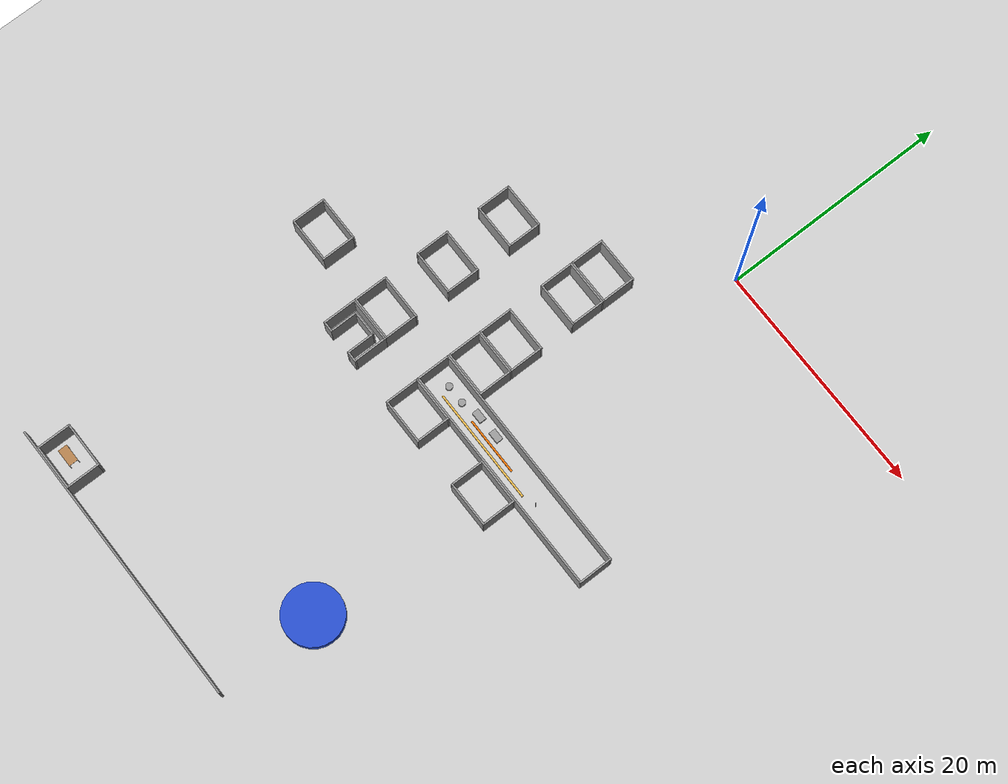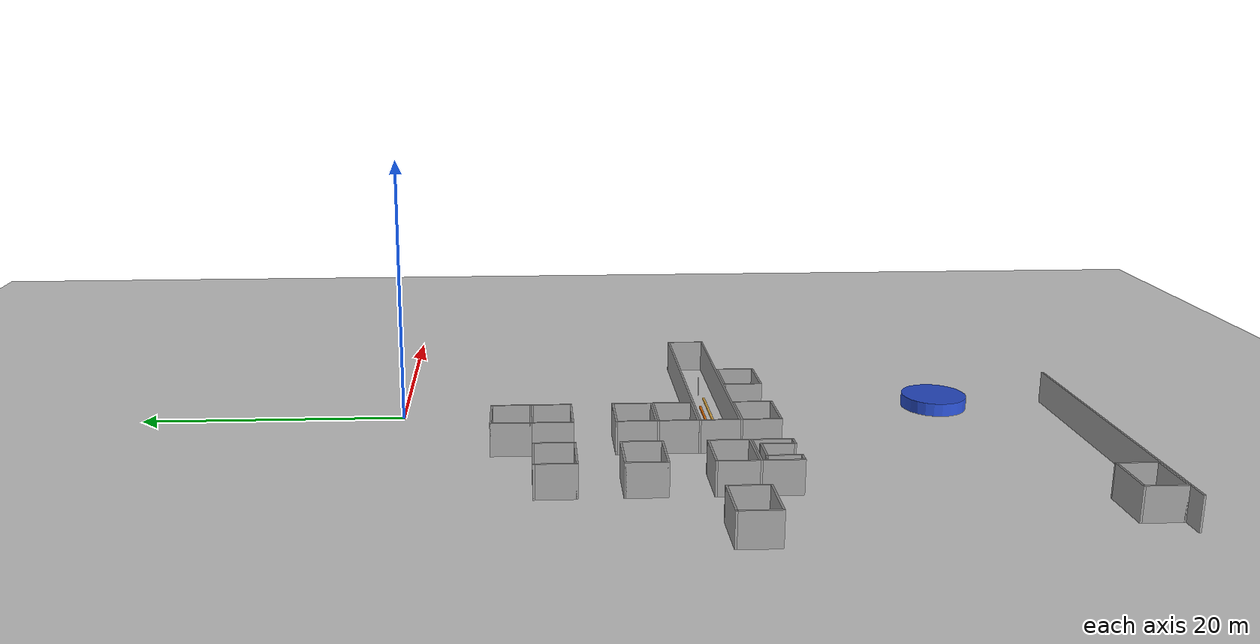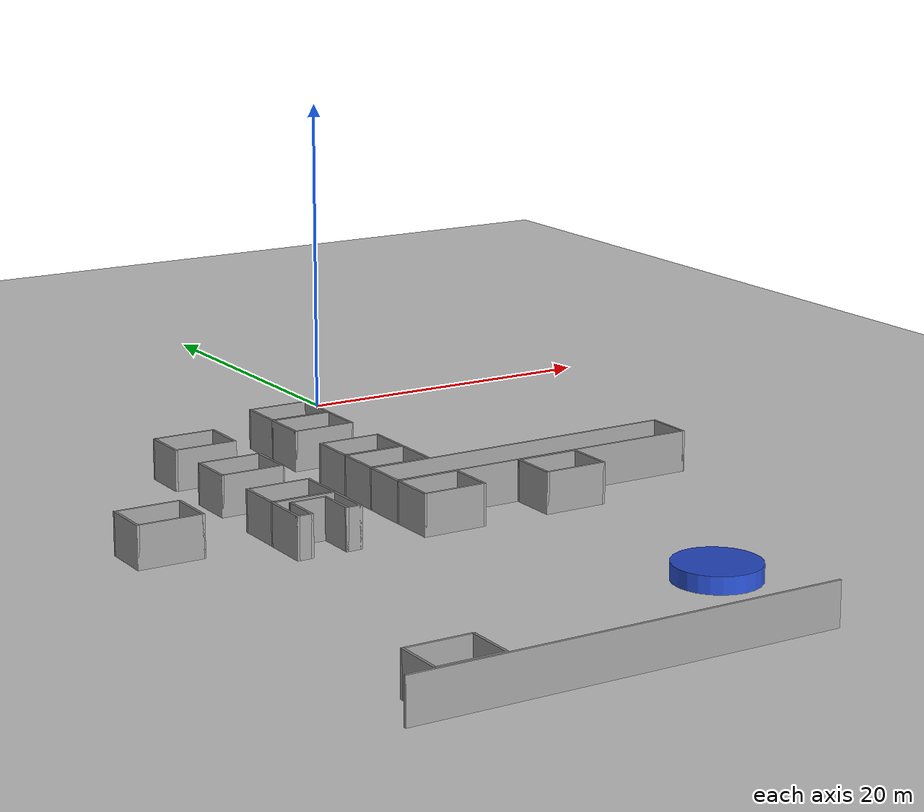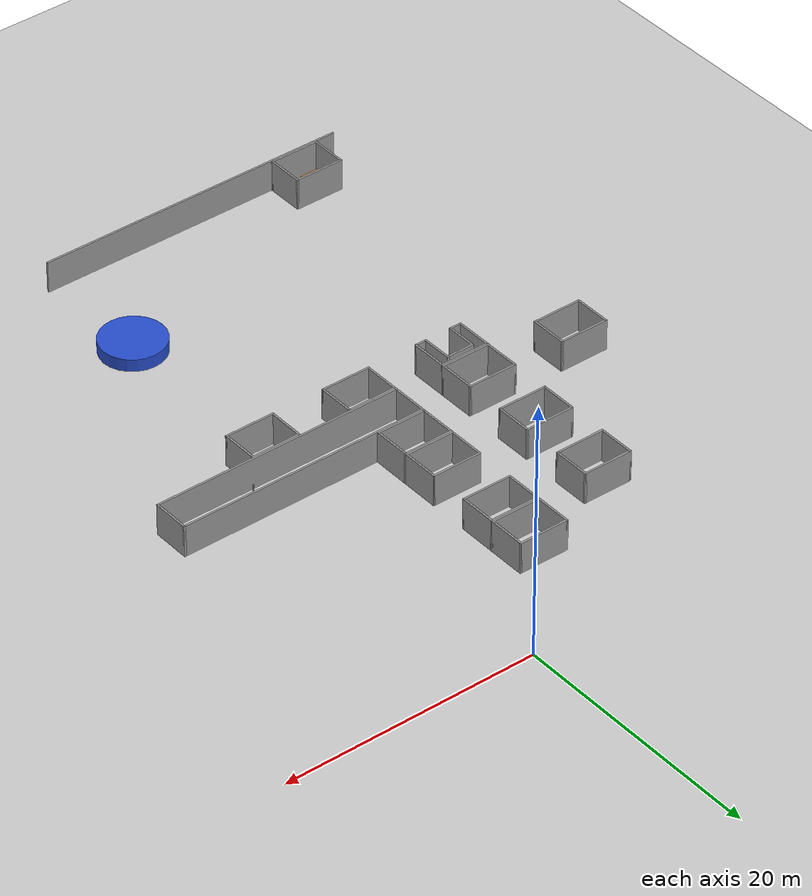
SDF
<sdf version="1.6">
 <world name="default">
  <model name="ground_plane">
   <static>1</static>
   <link name="link">
    <collision name="collision">
     <geometry><plane><normal>0 0 1</normal><size>105 105</size></plane></geometry>
     <surface>
      <contact><collide_bitmask>65535</collide_bitmask></contact>
      <friction><ode><mu>100</mu><mu2>50</mu2></ode></friction>
     </surface>
    </collision>
    <visual name="visual">
     <cast_shadows>0</cast_shadows>
     <geometry><plane><normal>0 0 1</normal><size>105 105</size></plane></geometry>
     <material>
      <script><uri>file://media/materials/scripts/gazebo.material</uri><name>Gazebo/Grey</name></script>
     </material>
    </visual>
   </link>
  </model>
  <model name="base3x20_2">
   <pose>1.5051 -23.232 0 0 -0 0</pose>
   <link name="Wall_16">
    <collision name="Wall_16_Collision">
     <geometry><box><size>3 0.15 2.5</size></box></geometry>
     <pose>0 0 1.25 0 -0 0</pose>
    </collision>
    <visual name="Wall_16_Visual">
     <pose>0 0 1.25 0 -0 0</pose>
     <geometry><box><size>3 0.15 2.5</size></box></geometry>
     <material>
      <script><uri>file://media/materials/scripts/gazebo.material</uri><name>Gazebo/Grey</name></script>
      <ambient>1 1 1 1</ambient>
     </material>
     <meta><layer>0</layer></meta>
    </visual>
    <pose>-9.925 -0 0 0 -0 -1.5708</pose>
   </link>
   <link name="Wall_17">
    <collision name="Wall_17_Collision">
     <geometry><box><size>20 0.15 2.5</size></box></geometry>
     <pose>0 0 1.25 0 -0 0</pose>
    </collision>
    <visual name="Wall_17_Visual">
     <pose>0 0 1.25 0 -0 0</pose>
     <geometry><box><size>20 0.15 2.5</size></box></geometry>
     <material>
      <script><uri>file://media/materials/scripts/gazebo.material</uri><name>Gazebo/Grey</name></script>
      <ambient>1 1 1 1</ambient>
     </material>
     <meta><layer>0</layer></meta>
    </visual>
    <pose>-0 -1.425 0 0 -0 0</pose>
   </link>
   <link name="Wall_18">
    <collision name="Wall_18_Collision">
     <geometry><box><size>3 0.15 2.5</size></box></geometry>
     <pose>0 0 1.25 0 -0 0</pose>
    </collision>
    <visual name="Wall_18_Visual">
     <pose>0 0 1.25 0 -0 0</pose>
     <geometry><box><size>3 0.15 2.5</size></box></geometry>
     <material>
      <script><uri>file://media/materials/scripts/gazebo.material</uri><name>Gazebo/Grey</name></script>
      <ambient>1 1 1 1</ambient>
     </material>
     <meta><layer>0</layer></meta>
    </visual>
    <pose>9.925 -0 0 0 -0 1.5708</pose>
   </link>
   <link name="Wall_19">
    <collision name="Wall_19_Collision">
     <geometry><box><size>20 0.15 2.5</size></box></geometry>
     <pose>0 0 1.25 0 -0 0</pose>
    </collision>
    <visual name="Wall_19_Visual">
     <pose>0 0 1.25 0 -0 0</pose>
     <geometry><box><size>20 0.15 2.5</size></box></geometry>
     <material>
      <script><uri>file://media/materials/scripts/gazebo.material</uri><name>Gazebo/Grey</name></script>
      <ambient>1 1 1 1</ambient>
     </material>
     <meta><layer>0</layer></meta>
    </visual>
    <pose>-0 1.425 0 0 -0 3.14159</pose>
   </link>
   <static>1</static>
  </model>
  <model name="base3x4_53">
   <pose>-22.3998 -23.2187 0 0 -0 0</pose>
   <link name="Wall_18">
    <collision name="Wall_18_Collision">
     <geometry><box><size>3 0.15 2.5</size></box></geometry>
     <pose>0 0 1.25 0 -0 0</pose>
    </collision>
    <visual name="Wall_18_Visual">
     <pose>0 0 1.25 0 -0 0</pose>
     <geometry><box><size>3 0.15 2.5</size></box></geometry>
     <material>
      <script><uri>file://media/materials/scripts/gazebo.material</uri><name>Gazebo/Grey</name></script>
      <ambient>1 1 1 1</ambient>
     </material>
     <meta><layer>0</layer></meta>
    </visual>
    <pose>-1.925 -0 0 0 -0 -1.5708</pose>
   </link>
   <link name="Wall_19">
    <collision name="Wall_19_Collision">
     <geometry><box><size>4 0.15 2.5</size></box></geometry>
     <pose>0 0 1.25 0 -0 0</pose>
    </collision>
    <visual name="Wall_19_Visual">
     <pose>0 0 1.25 0 -0 0</pose>
     <geometry><box><size>4 0.15 2.5</size></box></geometry>
     <material>
      <script><uri>file://media/materials/scripts/gazebo.material</uri><name>Gazebo/Grey</name></script>
      <ambient>1 1 1 1</ambient>
     </material>
     <meta><layer>0</layer></meta>
    </visual>
    <pose>-0 -1.425 0 0 -0 0</pose>
   </link>
   <link name="Wall_20">
    <collision name="Wall_20_Collision">
     <geometry><box><size>3 0.15 2.5</size></box></geometry>
     <pose>0 0 1.25 0 -0 0</pose>
    </collision>
    <visual name="Wall_20_Visual">
     <pose>0 0 1.25 0 -0 0</pose>
     <geometry><box><size>3 0.15 2.5</size></box></geometry>
     <material>
      <script><uri>file://media/materials/scripts/gazebo.material</uri><name>Gazebo/Grey</name></script>
      <ambient>1 1 1 1</ambient>
     </material>
     <meta><layer>0</layer></meta>
    </visual>
    <pose>1.925 -0 0 0 -0 1.5708</pose>
   </link>
   <link name="Wall_21">
    <collision name="Wall_21_Collision">
     <geometry><box><size>4 0.15 2.5</size></box></geometry>
     <pose>0 0 1.25 0 -0 0</pose>
    </collision>
    <visual name="Wall_21_Visual">
     <pose>0 0 1.25 0 -0 0</pose>
     <geometry><box><size>4 0.15 2.5</size></box></geometry>
     <material>
      <script><uri>file://media/materials/scripts/gazebo.material</uri><name>Gazebo/Grey</name></script>
      <ambient>1 1 1 1</ambient>
     </material>
     <meta><layer>0</layer></meta>
    </visual>
    <pose>-0 1.425 0 0 -0 3.14159</pose>
   </link>
   <static>1</static>
  </model>
  <model name="base3x4_64">
   <pose>-14.4197 -23.2316 0 0 -0 0</pose>
   <link name="Wall_18">
    <collision name="Wall_18_Collision">
     <geometry><box><size>3 0.15 2.5</size></box></geometry>
     <pose>0 0 1.25 0 -0 0</pose>
    </collision>
    <visual name="Wall_18_Visual">
     <pose>0 0 1.25 0 -0 0</pose>
     <geometry><box><size>3 0.15 2.5</size></box></geometry>
     <material>
      <script><uri>file://media/materials/scripts/gazebo.material</uri><name>Gazebo/Grey</name></script>
      <ambient>1 1 1 1</ambient>
     </material>
     <meta><layer>0</layer></meta>
    </visual>
    <pose>-1.925 -0 0 0 -0 -1.5708</pose>
   </link>
   <link name="Wall_19">
    <collision name="Wall_19_Collision">
     <geometry><box><size>4 0.15 2.5</size></box></geometry>
     <pose>0 0 1.25 0 -0 0</pose>
    </collision>
    <visual name="Wall_19_Visual">
     <pose>0 0 1.25 0 -0 0</pose>
     <geometry><box><size>4 0.15 2.5</size></box></geometry>
     <material>
      <script><uri>file://media/materials/scripts/gazebo.material</uri><name>Gazebo/Grey</name></script>
      <ambient>1 1 1 1</ambient>
     </material>
     <meta><layer>0</layer></meta>
    </visual>
    <pose>-0 -1.425 0 0 -0 0</pose>
   </link>
   <link name="Wall_20">
    <collision name="Wall_20_Collision">
     <geometry><box><size>3 0.15 2.5</size></box></geometry>
     <pose>0 0 1.25 0 -0 0</pose>
    </collision>
    <visual name="Wall_20_Visual">
     <pose>0 0 1.25 0 -0 0</pose>
     <geometry><box><size>3 0.15 2.5</size></box></geometry>
     <material>
      <script><uri>file://media/materials/scripts/gazebo.material</uri><name>Gazebo/Grey</name></script>
      <ambient>1 1 1 1</ambient>
     </material>
     <meta><layer>0</layer></meta>
    </visual>
    <pose>1.925 -0 0 0 -0 1.5708</pose>
   </link>
   <link name="Wall_21">
    <collision name="Wall_21_Collision">
     <geometry><box><size>4 0.15 2.5</size></box></geometry>
     <pose>0 0 1.25 0 -0 0</pose>
    </collision>
    <visual name="Wall_21_Visual">
     <pose>0 0 1.25 0 -0 0</pose>
     <geometry><box><size>4 0.15 2.5</size></box></geometry>
     <material>
      <script><uri>file://media/materials/scripts/gazebo.material</uri><name>Gazebo/Grey</name></script>
      <ambient>1 1 1 1</ambient>
     </material>
     <meta><layer>0</layer></meta>
    </visual>
    <pose>-0 1.425 0 0 -0 3.14159</pose>
   </link>
   <static>1</static>
  </model>
  <model name="base3x4_72">
   <pose>-14.4176 -17.2389 0 0 -0 0</pose>
   <link name="Wall_18">
    <collision name="Wall_18_Collision">
     <geometry><box><size>3 0.15 2.5</size></box></geometry>
     <pose>0 0 1.25 0 -0 0</pose>
    </collision>
    <visual name="Wall_18_Visual">
     <pose>0 0 1.25 0 -0 0</pose>
     <geometry><box><size>3 0.15 2.5</size></box></geometry>
     <material>
      <script><uri>file://media/materials/scripts/gazebo.material</uri><name>Gazebo/Grey</name></script>
      <ambient>1 1 1 1</ambient>
     </material>
     <meta><layer>0</layer></meta>
    </visual>
    <pose>-1.925 -0 0 0 -0 -1.5708</pose>
   </link>
   <link name="Wall_19">
    <collision name="Wall_19_Collision">
     <geometry><box><size>4 0.15 2.5</size></box></geometry>
     <pose>0 0 1.25 0 -0 0</pose>
    </collision>
    <visual name="Wall_19_Visual">
     <pose>0 0 1.25 0 -0 0</pose>
     <geometry><box><size>4 0.15 2.5</size></box></geometry>
     <material>
      <script><uri>file://media/materials/scripts/gazebo.material</uri><name>Gazebo/Grey</name></script>
      <ambient>1 1 1 1</ambient>
     </material>
     <meta><layer>0</layer></meta>
    </visual>
    <pose>-0 -1.425 0 0 -0 0</pose>
   </link>
   <link name="Wall_20">
    <collision name="Wall_20_Collision">
     <geometry><box><size>3 0.15 2.5</size></box></geometry>
     <pose>0 0 1.25 0 -0 0</pose>
    </collision>
    <visual name="Wall_20_Visual">
     <pose>0 0 1.25 0 -0 0</pose>
     <geometry><box><size>3 0.15 2.5</size></box></geometry>
     <material>
      <script><uri>file://media/materials/scripts/gazebo.material</uri><name>Gazebo/Grey</name></script>
      <ambient>1 1 1 1</ambient>
     </material>
     <meta><layer>0</layer></meta>
    </visual>
    <pose>1.925 -0 0 0 -0 1.5708</pose>
   </link>
   <link name="Wall_21">
    <collision name="Wall_21_Collision">
     <geometry><box><size>4 0.15 2.5</size></box></geometry>
     <pose>0 0 1.25 0 -0 0</pose>
    </collision>
    <visual name="Wall_21_Visual">
     <pose>0 0 1.25 0 -0 0</pose>
     <geometry><box><size>4 0.15 2.5</size></box></geometry>
     <material>
      <script><uri>file://media/materials/scripts/gazebo.material</uri><name>Gazebo/Grey</name></script>
      <ambient>1 1 1 1</ambient>
     </material>
     <meta><layer>0</layer></meta>
    </visual>
    <pose>-0 1.425 0 0 -0 3.14159</pose>
   </link>
   <static>1</static>
  </model>
  <model name="base3x4_75">
   <pose>-14.4135 -11.2542 0 0 -0 0</pose>
   <link name="Wall_18">
    <collision name="Wall_18_Collision">
     <geometry><box><size>3 0.15 2.5</size></box></geometry>
     <pose>0 0 1.25 0 -0 0</pose>
    </collision>
    <visual name="Wall_18_Visual">
     <pose>0 0 1.25 0 -0 0</pose>
     <geometry><box><size>3 0.15 2.5</size></box></geometry>
     <material>
      <script><uri>file://media/materials/scripts/gazebo.material</uri><name>Gazebo/Grey</name></script>
      <ambient>1 1 1 1</ambient>
     </material>
     <meta><layer>0</layer></meta>
    </visual>
    <pose>-1.925 -0 0 0 -0 -1.5708</pose>
   </link>
   <link name="Wall_19">
    <collision name="Wall_19_Collision">
     <geometry><box><size>4 0.15 2.5</size></box></geometry>
     <pose>0 0 1.25 0 -0 0</pose>
    </collision>
    <visual name="Wall_19_Visual">
     <pose>0 0 1.25 0 -0 0</pose>
     <geometry><box><size>4 0.15 2.5</size></box></geometry>
     <material>
      <script><uri>file://media/materials/scripts/gazebo.material</uri><name>Gazebo/Grey</name></script>
      <ambient>1 1 1 1</ambient>
     </material>
     <meta><layer>0</layer></meta>
    </visual>
    <pose>-0 -1.425 0 0 -0 0</pose>
   </link>
   <link name="Wall_20">
    <collision name="Wall_20_Collision">
     <geometry><box><size>3 0.15 2.5</size></box></geometry>
     <pose>0 0 1.25 0 -0 0</pose>
    </collision>
    <visual name="Wall_20_Visual">
     <pose>0 0 1.25 0 -0 0</pose>
     <geometry><box><size>3 0.15 2.5</size></box></geometry>
     <material>
      <script><uri>file://media/materials/scripts/gazebo.material</uri><name>Gazebo/Grey</name></script>
      <ambient>1 1 1 1</ambient>
     </material>
     <meta><layer>0</layer></meta>
    </visual>
    <pose>1.925 -0 0 0 -0 1.5708</pose>
   </link>
   <link name="Wall_21">
    <collision name="Wall_21_Collision">
     <geometry><box><size>4 0.15 2.5</size></box></geometry>
     <pose>0 0 1.25 0 -0 0</pose>
    </collision>
    <visual name="Wall_21_Visual">
     <pose>0 0 1.25 0 -0 0</pose>
     <geometry><box><size>4 0.15 2.5</size></box></geometry>
     <material>
      <script><uri>file://media/materials/scripts/gazebo.material</uri><name>Gazebo/Grey</name></script>
      <ambient>1 1 1 1</ambient>
     </material>
     <meta><layer>0</layer></meta>
    </visual>
    <pose>-0 1.425 0 0 -0 3.14159</pose>
   </link>
   <static>1</static>
  </model>
  <model name="base3x4_37">
   <pose>-19.8731 -49.167 0 0 -0 0</pose>
   <link name="Wall_18">
    <collision name="Wall_18_Collision">
     <geometry><box><size>3 0.15 2.5</size></box></geometry>
     <pose>0 0 1.25 0 -0 0</pose>
    </collision>
    <visual name="Wall_18_Visual">
     <pose>0 0 1.25 0 -0 0</pose>
     <geometry><box><size>3 0.15 2.5</size></box></geometry>
     <material>
      <script><uri>file://media/materials/scripts/gazebo.material</uri><name>Gazebo/Grey</name></script>
      <ambient>1 1 1 1</ambient>
     </material>
     <meta><layer>0</layer></meta>
    </visual>
    <pose>-1.925 -0 0 0 -0 -1.5708</pose>
   </link>
   <link name="Wall_19">
    <collision name="Wall_19_Collision">
     <geometry><box><size>4 0.15 2.5</size></box></geometry>
     <pose>0 0 1.25 0 -0 0</pose>
    </collision>
    <visual name="Wall_19_Visual">
     <pose>0 0 1.25 0 -0 0</pose>
     <geometry><box><size>4 0.15 2.5</size></box></geometry>
     <material>
      <script><uri>file://media/materials/scripts/gazebo.material</uri><name>Gazebo/Grey</name></script>
      <ambient>1 1 1 1</ambient>
     </material>
     <meta><layer>0</layer></meta>
    </visual>
    <pose>-0 -1.425 0 0 -0 0</pose>
   </link>
   <link name="Wall_20">
    <collision name="Wall_20_Collision">
     <geometry><box><size>3 0.15 2.5</size></box></geometry>
     <pose>0 0 1.25 0 -0 0</pose>
    </collision>
    <visual name="Wall_20_Visual">
     <pose>0 0 1.25 0 -0 0</pose>
     <geometry><box><size>3 0.15 2.5</size></box></geometry>
     <material>
      <script><uri>file://media/materials/scripts/gazebo.material</uri><name>Gazebo/Grey</name></script>
      <ambient>1 1 1 1</ambient>
     </material>
     <meta><layer>0</layer></meta>
    </visual>
    <pose>1.925 -0 0 0 -0 1.5708</pose>
   </link>
   <link name="Wall_21">
    <collision name="Wall_21_Collision">
     <geometry><box><size>4 0.15 2.5</size></box></geometry>
     <pose>0 0 1.25 0 -0 0</pose>
    </collision>
    <visual name="Wall_21_Visual">
     <pose>0 0 1.25 0 -0 0</pose>
     <geometry><box><size>4 0.15 2.5</size></box></geometry>
     <material>
      <script><uri>file://media/materials/scripts/gazebo.material</uri><name>Gazebo/Grey</name></script>
      <ambient>1 1 1 1</ambient>
     </material>
     <meta><layer>0</layer></meta>
    </visual>
    <pose>-0 1.425 0 0 -0 3.14159</pose>
   </link>
   <static>1</static>
  </model>
  <model name="wall_25m_7">
   <pose>-10.9546 -50.7217 0 0 -0 0</pose>
   <link name="Wall_28">
    <collision name="Wall_28_Collision">
     <geometry><box><size>25 0.15 2.5</size></box></geometry>
     <pose>0 0 1.25 0 -0 0</pose>
    </collision>
    <visual name="Wall_28_Visual">
     <pose>0 0 1.25 0 -0 0</pose>
     <geometry><box><size>25 0.15 2.5</size></box></geometry>
     <material>
      <script><uri>file://media/materials/scripts/gazebo.material</uri><name>Gazebo/Grey</name></script>
      <ambient>1 1 1 1</ambient>
     </material>
     <meta><layer>0</layer></meta>
    </visual>
   </link>
   <static>1</static>
  </model>
  <model name="table_14">
   <static>1</static>
   <link name="link">
    <collision name="surface">
     <pose>0 0 1 0 -0 0</pose>
     <geometry><box><size>1.5 0.8 0.03</size></box></geometry>
     <surface><friction><ode><mu>0.6</mu><mu2>0.6</mu2></ode></friction></surface>
    </collision>
    <visual name="visual1">
     <pose>0 0 1 0 -0 0</pose>
     <geometry><box><size>1.5 0.8 0.03</size></box></geometry>
     <material>
      <script><uri>file://media/materials/scripts/gazebo.material</uri><name>Gazebo/Wood</name></script>
     </material>
    </visual>
    <collision name="front_left_leg">
     <pose>0.68 0.38 0.5 0 -0 0</pose>
     <geometry><cylinder><radius>0.02</radius><length>1</length></cylinder></geometry>
    </collision>
    <visual name="front_left_leg">
     <pose>0.68 0.38 0.5 0 -0 0</pose>
     <geometry><cylinder><radius>0.02</radius><length>1</length></cylinder></geometry>
     <material>
      <script><uri>file://media/materials/scripts/gazebo.material</uri><name>Gazebo/Grey</name></script>
     </material>
    </visual>
    <collision name="front_right_leg">
     <pose>0.68 -0.38 0.5 0 -0 0</pose>
     <geometry><cylinder><radius>0.02</radius><length>1</length></cylinder></geometry>
    </collision>
    <visual name="front_right_leg">
     <pose>0.68 -0.38 0.5 0 -0 0</pose>
     <geometry><cylinder><radius>0.02</radius><length>1</length></cylinder></geometry>
     <material>
      <script><uri>file://media/materials/scripts/gazebo.material</uri><name>Gazebo/Grey</name></script>
     </material>
    </visual>
    <collision name="back_right_leg">
     <pose>-0.68 -0.38 0.5 0 -0 0</pose>
     <geometry><cylinder><radius>0.02</radius><length>1</length></cylinder></geometry>
    </collision>
    <visual name="back_right_leg">
     <pose>-0.68 -0.38 0.5 0 -0 0</pose>
     <geometry><cylinder><radius>0.02</radius><length>1</length></cylinder></geometry>
     <material>
      <script><uri>file://media/materials/scripts/gazebo.material</uri><name>Gazebo/Grey</name></script>
     </material>
    </visual>
    <collision name="back_left_leg">
     <pose>-0.68 0.38 0.5 0 -0 0</pose>
     <geometry><cylinder><radius>0.02</radius><length>1</length></cylinder></geometry>
    </collision>
    <visual name="back_left_leg">
     <pose>-0.68 0.38 0.5 0 -0 0</pose>
     <geometry><cylinder><radius>0.02</radius><length>1</length></cylinder></geometry>
     <material>
      <script><uri>file://media/materials/scripts/gazebo.material</uri><name>Gazebo/Grey</name></script>
     </material>
    </visual>
   </link>
   <pose>-20.3507 -49.1946 0 0 -0 0</pose>
  </model>
  <model name="bar10x0.15x0.15">
   <pose>-1.69484 -23.7489 0 0 -0 0</pose>
   <link name="Wall_5">
    <collision name="Wall_5_Collision">
     <geometry><box><size>10 0.15 0.15</size></box></geometry>
     <pose>0 0 0.075 0 -0 0</pose>
    </collision>
    <visual name="Wall_5_Visual">
     <pose>0 0 0.075 0 -0 0</pose>
     <geometry><box><size>10 0.15 0.15</size></box></geometry>
     <material>
      <script><uri>file://media/materials/scripts/gazebo.material</uri><name>Gazebo/Grey</name></script>
      <ambient>1 0.764706 0.305882 1</ambient>
     </material>
     <meta><layer>0</layer></meta>
    </visual>
   </link>
   <static>1</static>
  </model>
  <model name="bar5x0.15x0.15">
   <pose>-1.24356 -23.2103 0 0 -0 0</pose>
   <link name="Wall_12">
    <collision name="Wall_12_Collision">
     <geometry><box><size>5 0.15 0.15</size></box></geometry>
     <pose>0 0 0.075 0 -0 0</pose>
    </collision>
    <visual name="Wall_12_Visual">
     <pose>0 0 0.075 0 -0 0</pose>
     <geometry><box><size>5 0.15 0.15</size></box></geometry>
     <material>
      <script><uri>file://media/materials/scripts/gazebo.material</uri><name>Gazebo/Grey</name></script>
      <ambient>0.996078 0.47451 0.0196078 1</ambient>
     </material>
     <meta><layer>0</layer></meta>
    </visual>
   </link>
   <static>1</static>
  </model>
  <model name="unit_box_5mmx5mmx2m">
   <link name="link">
    <inertial>
     <mass>1</mass>
     <inertia>
      <ixx>0.166667</ixx>
      <ixy>0</ixy>
      <ixz>0</ixz>
      <iyy>0.166667</iyy>
      <iyz>0</iyz>
      <izz>0.166667</izz>
     </inertia>
    </inertial>
    <visual name="visual">
     <geometry><box><size>0.05 0.05 2</size></box></geometry>
     <material>
      <script><name>Gazebo/Grey</name><uri>file://media/materials/scripts/gazebo.material</uri></script>
      <shader type="vertex"><normal_map>__default__</normal_map></shader>
      <ambient>0.3 0.3 0.3 1</ambient>
      <diffuse>0.7 0.7 0.7 1</diffuse>
      <specular>0.01 0.01 0.01 1</specular>
      <emissive>0 0 0 1</emissive>
     </material>
    </visual>
    <collision name="collision">
     <geometry><box><size>1 1 1</size></box></geometry>
     <surface>
      <friction>
       <ode><mu>1</mu><mu2>1</mu2><fdir1>0 0 0</fdir1><slip1>0</slip1><slip2>0</slip2></ode>
       <torsional>
        <coefficient>1</coefficient>
        <patch_radius>0</patch_radius>
        <surface_radius>0</surface_radius>
        <use_patch_radius>1</use_patch_radius>
        <ode><slip>0</slip></ode>
       </torsional>
      </friction>
      <bounce><restitution_coefficient>0</restitution_coefficient><threshold>1e+06</threshold></bounce>
      <contact>
       <collide_without_contact>0</collide_without_contact>
       <collide_without_contact_bitmask>1</collide_without_contact_bitmask>
       <collide_bitmask>1</collide_bitmask>
       <ode>
        <soft_cfm>0</soft_cfm>
        <soft_erp>0.2</soft_erp>
        <kp>1e+13</kp>
        <kd>1</kd>
        <max_vel>0.01</max_vel>
        <min_depth>0</min_depth>
       </ode>
       <bullet>
        <split_impulse>1</split_impulse>
        <split_impulse_penetration_threshold>-0.01</split_impulse_penetration_threshold>
        <soft_cfm>0</soft_cfm>
        <soft_erp>0.2</soft_erp>
        <kp>1e+13</kp>
        <kd>1</kd>
       </bullet>
      </contact>
     </surface>
    </collision>
   </link>
   <static>0</static>
   <pose>4.52759 -23.4698 0.499983 3.4e-05 -0 0</pose>
  </model>
  <model name="unit_cylinder_r2.5_l1">
   <link name="link">
    <inertial>
     <mass>1</mass>
     <inertia><ixx>0.145833</ixx><ixy>0</ixy><ixz>0</ixz><iyy>0.145833</iyy><iyz>0</iyz><izz>0.125</izz></inertia>
    </inertial>
    <visual name="visual">
     <geometry><cylinder><radius>2.5</radius><length>1</length></cylinder></geometry>
     <material>
      <script><name>Gazebo/Blue</name><uri>file://media/materials/scripts/gazebo.material</uri></script>
      <shader type="vertex"><normal_map>__default__</normal_map></shader>
      <ambient>0.3 0.3 0.3 1</ambient>
      <diffuse>0.7 0.7 0.7 1</diffuse>
      <specular>0.01 0.01 0.01 1</specular>
      <emissive>0 0 0 1</emissive>
     </material>
    </visual>
    <collision name="collision">
     <geometry><cylinder><radius>2.5</radius><length>1</length></cylinder></geometry>
     <surface>
      <friction>
       <ode><mu>1</mu><mu2>1</mu2><fdir1>0 0 0</fdir1><slip1>0</slip1><slip2>0</slip2></ode>
       <torsional>
        <coefficient>1</coefficient>
        <patch_radius>0</patch_radius>
        <surface_radius>0</surface_radius>
        <use_patch_radius>1</use_patch_radius>
        <ode><slip>0</slip></ode>
       </torsional>
      </friction>
      <bounce><restitution_coefficient>0</restitution_coefficient><threshold>1e+06</threshold></bounce>
      <contact>
       <collide_without_contact>0</collide_without_contact>
       <collide_without_contact_bitmask>1</collide_without_contact_bitmask>
       <collide_bitmask>1</collide_bitmask>
       <ode>
        <soft_cfm>0</soft_cfm>
        <soft_erp>0.2</soft_erp>
        <kp>1e+13</kp>
        <kd>1</kd>
        <max_vel>0.01</max_vel>
        <min_depth>0</min_depth>
       </ode>
       <bullet>
        <split_impulse>1</split_impulse>
        <split_impulse_penetration_threshold>-0.01</split_impulse_penetration_threshold>
        <soft_cfm>0</soft_cfm>
        <soft_erp>0.2</soft_erp>
        <kp>1e+13</kp>
        <kd>1</kd>
       </bullet>
      </contact>
     </surface>
    </collision>
   </link>
   <static>0</static>
   <pose>0.856728 -41.7756 0.5 0 -0 8e-06</pose>
  </model>
  <model name="unit_cylinder30x30cm_1">
   <link name="link">
    <inertial>
     <mass>1</mass>
     <inertia><ixx>0.145833</ixx><ixy>0</ixy><ixz>0</ixz><iyy>0.145833</iyy><iyz>0</iyz><izz>0.125</izz></inertia>
    </inertial>
    <visual name="visual">
     <geometry><cylinder><radius>0.3</radius><length>0.3</length></cylinder></geometry>
     <material>
      <script><name>Gazebo/Grey</name><uri>file://media/materials/scripts/gazebo.material</uri></script>
      <shader type="vertex"><normal_map>__default__</normal_map></shader>
      <ambient>0.3 0.3 0.3 1</ambient>
      <diffuse>0.7 0.7 0.7 1</diffuse>
      <specular>0.01 0.01 0.01 1</specular>
      <emissive>0 0 0 1</emissive>
     </material>
    </visual>
    <collision name="collision">
     <geometry><cylinder><radius>0.3</radius><length>0.3</length></cylinder></geometry>
     <surface>
      <friction>
       <ode><mu>1</mu><mu2>1</mu2><fdir1>0 0 0</fdir1><slip1>0</slip1><slip2>0</slip2></ode>
       <torsional>
        <coefficient>1</coefficient>
        <patch_radius>0</patch_radius>
        <surface_radius>0</surface_radius>
        <use_patch_radius>1</use_patch_radius>
        <ode><slip>0</slip></ode>
       </torsional>
      </friction>
      <bounce><restitution_coefficient>0</restitution_coefficient><threshold>1e+06</threshold></bounce>
      <contact>
       <collide_without_contact>0</collide_without_contact>
       <collide_without_contact_bitmask>1</collide_without_contact_bitmask>
       <collide_bitmask>1</collide_bitmask>
       <ode>
        <soft_cfm>0</soft_cfm>
        <soft_erp>0.2</soft_erp>
        <kp>1e+13</kp>
        <kd>1</kd>
        <max_vel>0.01</max_vel>
        <min_depth>0</min_depth>
       </ode>
       <bullet>
        <split_impulse>1</split_impulse>
        <split_impulse_penetration_threshold>-0.01</split_impulse_penetration_threshold>
        <soft_cfm>0</soft_cfm>
        <soft_erp>0.2</soft_erp>
        <kp>1e+13</kp>
        <kd>1</kd>
       </bullet>
      </contact>
     </surface>
    </collision>
   </link>
   <static>0</static>
   <pose>-5.34818 -22.9136 0.149981 -0 -0 -0</pose>
  </model>
  <model name="unit_cylinder30x30cm_2">
   <link name="link">
    <inertial>
     <mass>1</mass>
     <inertia><ixx>0.145833</ixx><ixy>0</ixy><ixz>0</ixz><iyy>0.145833</iyy><iyz>0</iyz><izz>0.125</izz></inertia>
    </inertial>
    <visual name="visual">
     <geometry><cylinder><radius>0.3</radius><length>0.3</length></cylinder></geometry>
     <material>
      <script><name>Gazebo/Grey</name><uri>file://media/materials/scripts/gazebo.material</uri></script>
      <shader type="vertex"><normal_map>__default__</normal_map></shader>
      <ambient>0.3 0.3 0.3 1</ambient>
      <diffuse>0.7 0.7 0.7 1</diffuse>
      <specular>0.01 0.01 0.01 1</specular>
      <emissive>0 0 0 1</emissive>
     </material>
    </visual>
    <collision name="collision">
     <geometry><cylinder><radius>0.3</radius><length>0.3</length></cylinder></geometry>
     <surface>
      <friction>
       <ode><mu>1</mu><mu2>1</mu2><fdir1>0 0 0</fdir1><slip1>0</slip1><slip2>0</slip2></ode>
       <torsional>
        <coefficient>1</coefficient>
        <patch_radius>0</patch_radius>
        <surface_radius>0</surface_radius>
        <use_patch_radius>1</use_patch_radius>
        <ode><slip>0</slip></ode>
       </torsional>
      </friction>
      <bounce><restitution_coefficient>0</restitution_coefficient><threshold>1e+06</threshold></bounce>
      <contact>
       <collide_without_contact>0</collide_without_contact>
       <collide_without_contact_bitmask>1</collide_without_contact_bitmask>
       <collide_bitmask>1</collide_bitmask>
       <ode>
        <soft_cfm>0</soft_cfm>
        <soft_erp>0.2</soft_erp>
        <kp>1e+13</kp>
        <kd>1</kd>
        <max_vel>0.01</max_vel>
        <min_depth>0</min_depth>
       </ode>
       <bullet>
        <split_impulse>1</split_impulse>
        <split_impulse_penetration_threshold>-0.01</split_impulse_penetration_threshold>
        <soft_cfm>0</soft_cfm>
        <soft_erp>0.2</soft_erp>
        <kp>1e+13</kp>
        <kd>1</kd>
       </bullet>
      </contact>
     </surface>
    </collision>
   </link>
   <static>0</static>
   <pose>-6.96506 -22.9077 0.149981 -0 -0 -0</pose>
  </model>
  <model name="unit_box_100x60x30cm_1">
   <link name="link">
    <inertial>
     <mass>1</mass>
     <inertia>
      <ixx>0.166667</ixx>
      <ixy>0</ixy>
      <ixz>0</ixz>
      <iyy>0.166667</iyy>
      <iyz>0</iyz>
      <izz>0.166667</izz>
     </inertia>
    </inertial>
    <visual name="visual">
     <geometry><box><size>1 0.6 0.3</size></box></geometry>
     <material>
      <script><name>Gazebo/Grey</name><uri>file://media/materials/scripts/gazebo.material</uri></script>
      <shader type="vertex"><normal_map>__default__</normal_map></shader>
      <ambient>0.3 0.3 0.3 1</ambient>
      <diffuse>0.7 0.7 0.7 1</diffuse>
      <specular>0.01 0.01 0.01 1</specular>
      <emissive>0 0 0 1</emissive>
     </material>
    </visual>
    <collision name="collision">
     <geometry><box><size>1 0.6 0.3</size></box></geometry>
     <surface>
      <friction>
       <ode><mu>1</mu><mu2>1</mu2><fdir1>0 0 0</fdir1><slip1>0</slip1><slip2>0</slip2></ode>
       <torsional>
        <coefficient>1</coefficient>
        <patch_radius>0</patch_radius>
        <surface_radius>0</surface_radius>
        <use_patch_radius>1</use_patch_radius>
        <ode><slip>0</slip></ode>
       </torsional>
      </friction>
      <bounce><restitution_coefficient>0</restitution_coefficient><threshold>1e+06</threshold></bounce>
      <contact>
       <collide_without_contact>0</collide_without_contact>
       <collide_without_contact_bitmask>1</collide_without_contact_bitmask>
       <collide_bitmask>1</collide_bitmask>
       <ode>
        <soft_cfm>0</soft_cfm>
        <soft_erp>0.2</soft_erp>
        <kp>1e+13</kp>
        <kd>1</kd>
        <max_vel>0.01</max_vel>
        <min_depth>0</min_depth>
       </ode>
       <bullet>
        <split_impulse>1</split_impulse>
        <split_impulse_penetration_threshold>-0.01</split_impulse_penetration_threshold>
        <soft_cfm>0</soft_cfm>
        <soft_erp>0.2</soft_erp>
        <kp>1e+13</kp>
        <kd>1</kd>
       </bullet>
      </contact>
     </surface>
    </collision>
   </link>
   <static>0</static>
   <pose>-3.68716 -22.5271 0.15 0 -0 0</pose>
  </model>
  <model name="unit_box_100x60x30cm_2">
   <link name="link">
    <inertial>
     <mass>1</mass>
     <inertia>
      <ixx>0.166667</ixx>
      <ixy>0</ixy>
      <ixz>0</ixz>
      <iyy>0.166667</iyy>
      <iyz>0</iyz>
      <izz>0.166667</izz>
     </inertia>
    </inertial>
    <visual name="visual">
     <geometry><box><size>1 0.6 0.3</size></box></geometry>
     <material>
      <script><name>Gazebo/Grey</name><uri>file://media/materials/scripts/gazebo.material</uri></script>
      <shader type="vertex"><normal_map>__default__</normal_map></shader>
      <ambient>0.3 0.3 0.3 1</ambient>
      <diffuse>0.7 0.7 0.7 1</diffuse>
      <specular>0.01 0.01 0.01 1</specular>
      <emissive>0 0 0 1</emissive>
     </material>
    </visual>
    <collision name="collision">
     <geometry><box><size>1 0.6 0.3</size></box></geometry>
     <surface>
      <friction>
       <ode><mu>1</mu><mu2>1</mu2><fdir1>0 0 0</fdir1><slip1>0</slip1><slip2>0</slip2></ode>
       <torsional>
        <coefficient>1</coefficient>
        <patch_radius>0</patch_radius>
        <surface_radius>0</surface_radius>
        <use_patch_radius>1</use_patch_radius>
        <ode><slip>0</slip></ode>
       </torsional>
      </friction>
      <bounce><restitution_coefficient>0</restitution_coefficient><threshold>1e+06</threshold></bounce>
      <contact>
       <collide_without_contact>0</collide_without_contact>
       <collide_without_contact_bitmask>1</collide_without_contact_bitmask>
       <collide_bitmask>1</collide_bitmask>
       <ode>
        <soft_cfm>0</soft_cfm>
        <soft_erp>0.2</soft_erp>
        <kp>1e+13</kp>
        <kd>1</kd>
        <max_vel>0.01</max_vel>
        <min_depth>0</min_depth>
       </ode>
       <bullet>
        <split_impulse>1</split_impulse>
        <split_impulse_penetration_threshold>-0.01</split_impulse_penetration_threshold>
        <soft_cfm>0</soft_cfm>
        <soft_erp>0.2</soft_erp>
        <kp>1e+13</kp>
        <kd>1</kd>
       </bullet>
      </contact>
     </surface>
    </collision>
   </link>
   <static>0</static>
   <pose>-1.65474 -22.4797 0.15 0 -0 0</pose>
  </model>
  <model name="base3x4_47">
   <pose>-6.49308 -20.2372 0 0 -0 0</pose>
   <link name="Wall_18">
    <collision name="Wall_18_Collision">
     <geometry><box><size>3 0.15 2.5</size></box></geometry>
     <pose>0 0 1.25 0 -0 0</pose>
    </collision>
    <visual name="Wall_18_Visual">
     <pose>0 0 1.25 0 -0 0</pose>
     <geometry><box><size>3 0.15 2.5</size></box></geometry>
     <material>
      <script><uri>file://media/materials/scripts/gazebo.material</uri><name>Gazebo/Grey</name></script>
      <ambient>1 1 1 1</ambient>
     </material>
     <meta><layer>0</layer></meta>
    </visual>
    <pose>-1.925 -0 0 0 -0 -1.5708</pose>
   </link>
   <link name="Wall_19">
    <collision name="Wall_19_Collision">
     <geometry><box><size>4 0.15 2.5</size></box></geometry>
     <pose>0 0 1.25 0 -0 0</pose>
    </collision>
    <visual name="Wall_19_Visual">
     <pose>0 0 1.25 0 -0 0</pose>
     <geometry><box><size>4 0.15 2.5</size></box></geometry>
     <material>
      <script><uri>file://media/materials/scripts/gazebo.material</uri><name>Gazebo/Grey</name></script>
      <ambient>1 1 1 1</ambient>
     </material>
     <meta><layer>0</layer></meta>
    </visual>
    <pose>-0 -1.425 0 0 -0 0</pose>
   </link>
   <link name="Wall_20">
    <collision name="Wall_20_Collision">
     <geometry><box><size>3 0.15 2.5</size></box></geometry>
     <pose>0 0 1.25 0 -0 0</pose>
    </collision>
    <visual name="Wall_20_Visual">
     <pose>0 0 1.25 0 -0 0</pose>
     <geometry><box><size>3 0.15 2.5</size></box></geometry>
     <material>
      <script><uri>file://media/materials/scripts/gazebo.material</uri><name>Gazebo/Grey</name></script>
      <ambient>1 1 1 1</ambient>
     </material>
     <meta><layer>0</layer></meta>
    </visual>
    <pose>1.925 -0 0 0 -0 1.5708</pose>
   </link>
   <link name="Wall_21">
    <collision name="Wall_21_Collision">
     <geometry><box><size>4 0.15 2.5</size></box></geometry>
     <pose>0 0 1.25 0 -0 0</pose>
    </collision>
    <visual name="Wall_21_Visual">
     <pose>0 0 1.25 0 -0 0</pose>
     <geometry><box><size>4 0.15 2.5</size></box></geometry>
     <material>
      <script><uri>file://media/materials/scripts/gazebo.material</uri><name>Gazebo/Grey</name></script>
      <ambient>1 1 1 1</ambient>
     </material>
     <meta><layer>0</layer></meta>
    </visual>
    <pose>-0 1.425 0 0 -0 3.14159</pose>
   </link>
   <static>1</static>
  </model>
  <model name="base3x4_52">
   <pose>-6.49511 -17.2522 0 0 -0 0</pose>
   <link name="Wall_18">
    <collision name="Wall_18_Collision">
     <geometry><box><size>3 0.15 2.5</size></box></geometry>
     <pose>0 0 1.25 0 -0 0</pose>
    </collision>
    <visual name="Wall_18_Visual">
     <pose>0 0 1.25 0 -0 0</pose>
     <geometry><box><size>3 0.15 2.5</size></box></geometry>
     <material>
      <script><uri>file://media/materials/scripts/gazebo.material</uri><name>Gazebo/Grey</name></script>
      <ambient>1 1 1 1</ambient>
     </material>
     <meta><layer>0</layer></meta>
    </visual>
    <pose>-1.925 -0 0 0 -0 -1.5708</pose>
   </link>
   <link name="Wall_19">
    <collision name="Wall_19_Collision">
     <geometry><box><size>4 0.15 2.5</size></box></geometry>
     <pose>0 0 1.25 0 -0 0</pose>
    </collision>
    <visual name="Wall_19_Visual">
     <pose>0 0 1.25 0 -0 0</pose>
     <geometry><box><size>4 0.15 2.5</size></box></geometry>
     <material>
      <script><uri>file://media/materials/scripts/gazebo.material</uri><name>Gazebo/Grey</name></script>
      <ambient>1 1 1 1</ambient>
     </material>
     <meta><layer>0</layer></meta>
    </visual>
    <pose>-0 -1.425 0 0 -0 0</pose>
   </link>
   <link name="Wall_20">
    <collision name="Wall_20_Collision">
     <geometry><box><size>3 0.15 2.5</size></box></geometry>
     <pose>0 0 1.25 0 -0 0</pose>
    </collision>
    <visual name="Wall_20_Visual">
     <pose>0 0 1.25 0 -0 0</pose>
     <geometry><box><size>3 0.15 2.5</size></box></geometry>
     <material>
      <script><uri>file://media/materials/scripts/gazebo.material</uri><name>Gazebo/Grey</name></script>
      <ambient>1 1 1 1</ambient>
     </material>
     <meta><layer>0</layer></meta>
    </visual>
    <pose>1.925 -0 0 0 -0 1.5708</pose>
   </link>
   <link name="Wall_21">
    <collision name="Wall_21_Collision">
     <geometry><box><size>4 0.15 2.5</size></box></geometry>
     <pose>0 0 1.25 0 -0 0</pose>
    </collision>
    <visual name="Wall_21_Visual">
     <pose>0 0 1.25 0 -0 0</pose>
     <geometry><box><size>4 0.15 2.5</size></box></geometry>
     <material>
      <script><uri>file://media/materials/scripts/gazebo.material</uri><name>Gazebo/Grey</name></script>
      <ambient>1 1 1 1</ambient>
     </material>
     <meta><layer>0</layer></meta>
    </visual>
    <pose>-0 1.425 0 0 -0 3.14159</pose>
   </link>
   <static>1</static>
  </model>
  <model name="base3x4_83">
   <pose>-6.49855 -11.2829 0 0 -0 0</pose>
   <link name="Wall_18">
    <collision name="Wall_18_Collision">
     <geometry><box><size>3 0.15 2.5</size></box></geometry>
     <pose>0 0 1.25 0 -0 0</pose>
    </collision>
    <visual name="Wall_18_Visual">
     <pose>0 0 1.25 0 -0 0</pose>
     <geometry><box><size>3 0.15 2.5</size></box></geometry>
     <material>
      <script><uri>file://media/materials/scripts/gazebo.material</uri><name>Gazebo/Grey</name></script>
      <ambient>1 1 1 1</ambient>
     </material>
     <meta><layer>0</layer></meta>
    </visual>
    <pose>-1.925 -0 0 0 -0 -1.5708</pose>
   </link>
   <link name="Wall_19">
    <collision name="Wall_19_Collision">
     <geometry><box><size>4 0.15 2.5</size></box></geometry>
     <pose>0 0 1.25 0 -0 0</pose>
    </collision>
    <visual name="Wall_19_Visual">
     <pose>0 0 1.25 0 -0 0</pose>
     <geometry><box><size>4 0.15 2.5</size></box></geometry>
     <material>
      <script><uri>file://media/materials/scripts/gazebo.material</uri><name>Gazebo/Grey</name></script>
      <ambient>1 1 1 1</ambient>
     </material>
     <meta><layer>0</layer></meta>
    </visual>
    <pose>-0 -1.425 0 0 -0 0</pose>
   </link>
   <link name="Wall_20">
    <collision name="Wall_20_Collision">
     <geometry><box><size>3 0.15 2.5</size></box></geometry>
     <pose>0 0 1.25 0 -0 0</pose>
    </collision>
    <visual name="Wall_20_Visual">
     <pose>0 0 1.25 0 -0 0</pose>
     <geometry><box><size>3 0.15 2.5</size></box></geometry>
     <material>
      <script><uri>file://media/materials/scripts/gazebo.material</uri><name>Gazebo/Grey</name></script>
      <ambient>1 1 1 1</ambient>
     </material>
     <meta><layer>0</layer></meta>
    </visual>
    <pose>1.925 -0 0 0 -0 1.5708</pose>
   </link>
   <link name="Wall_21">
    <collision name="Wall_21_Collision">
     <geometry><box><size>4 0.15 2.5</size></box></geometry>
     <pose>0 0 1.25 0 -0 0</pose>
    </collision>
    <visual name="Wall_21_Visual">
     <pose>0 0 1.25 0 -0 0</pose>
     <geometry><box><size>4 0.15 2.5</size></box></geometry>
     <material>
      <script><uri>file://media/materials/scripts/gazebo.material</uri><name>Gazebo/Grey</name></script>
      <ambient>1 1 1 1</ambient>
     </material>
     <meta><layer>0</layer></meta>
    </visual>
    <pose>-0 1.425 0 0 -0 3.14159</pose>
   </link>
   <static>1</static>
  </model>
  <model name="base3x4_87">
   <pose>-6.49556 -8.29053 0 0 -0 0</pose>
   <link name="Wall_18">
    <collision name="Wall_18_Collision">
     <geometry><box><size>3 0.15 2.5</size></box></geometry>
     <pose>0 0 1.25 0 -0 0</pose>
    </collision>
    <visual name="Wall_18_Visual">
     <pose>0 0 1.25 0 -0 0</pose>
     <geometry><box><size>3 0.15 2.5</size></box></geometry>
     <material>
      <script><uri>file://media/materials/scripts/gazebo.material</uri><name>Gazebo/Grey</name></script>
      <ambient>1 1 1 1</ambient>
     </material>
     <meta><layer>0</layer></meta>
    </visual>
    <pose>-1.925 -0 0 0 -0 -1.5708</pose>
   </link>
   <link name="Wall_19">
    <collision name="Wall_19_Collision">
     <geometry><box><size>4 0.15 2.5</size></box></geometry>
     <pose>0 0 1.25 0 -0 0</pose>
    </collision>
    <visual name="Wall_19_Visual">
     <pose>0 0 1.25 0 -0 0</pose>
     <geometry><box><size>4 0.15 2.5</size></box></geometry>
     <material>
      <script><uri>file://media/materials/scripts/gazebo.material</uri><name>Gazebo/Grey</name></script>
      <ambient>1 1 1 1</ambient>
     </material>
     <meta><layer>0</layer></meta>
    </visual>
    <pose>-0 -1.425 0 0 -0 0</pose>
   </link>
   <link name="Wall_20">
    <collision name="Wall_20_Collision">
     <geometry><box><size>3 0.15 2.5</size></box></geometry>
     <pose>0 0 1.25 0 -0 0</pose>
    </collision>
    <visual name="Wall_20_Visual">
     <pose>0 0 1.25 0 -0 0</pose>
     <geometry><box><size>3 0.15 2.5</size></box></geometry>
     <material>
      <script><uri>file://media/materials/scripts/gazebo.material</uri><name>Gazebo/Grey</name></script>
      <ambient>1 1 1 1</ambient>
     </material>
     <meta><layer>0</layer></meta>
    </visual>
    <pose>1.925 -0 0 0 -0 1.5708</pose>
   </link>
   <link name="Wall_21">
    <collision name="Wall_21_Collision">
     <geometry><box><size>4 0.15 2.5</size></box></geometry>
     <pose>0 0 1.25 0 -0 0</pose>
    </collision>
    <visual name="Wall_21_Visual">
     <pose>0 0 1.25 0 -0 0</pose>
     <geometry><box><size>4 0.15 2.5</size></box></geometry>
     <material>
      <script><uri>file://media/materials/scripts/gazebo.material</uri><name>Gazebo/Grey</name></script>
      <ambient>1 1 1 1</ambient>
     </material>
     <meta><layer>0</layer></meta>
    </visual>
    <pose>-0 1.425 0 0 -0 3.14159</pose>
   </link>
   <static>1</static>
  </model>
  <model name="base3x4_27">
   <pose>1.59388 -26.2311 0 0 -0 0</pose>
   <link name="Wall_18">
    <collision name="Wall_18_Collision">
     <geometry><box><size>3 0.15 2.5</size></box></geometry>
     <pose>0 0 1.25 0 -0 0</pose>
    </collision>
    <visual name="Wall_18_Visual">
     <pose>0 0 1.25 0 -0 0</pose>
     <geometry><box><size>3 0.15 2.5</size></box></geometry>
     <material>
      <script><uri>file://media/materials/scripts/gazebo.material</uri><name>Gazebo/Grey</name></script>
      <ambient>1 1 1 1</ambient>
     </material>
     <meta><layer>0</layer></meta>
    </visual>
    <pose>-1.925 -0 0 0 -0 -1.5708</pose>
   </link>
   <link name="Wall_19">
    <collision name="Wall_19_Collision">
     <geometry><box><size>4 0.15 2.5</size></box></geometry>
     <pose>0 0 1.25 0 -0 0</pose>
    </collision>
    <visual name="Wall_19_Visual">
     <pose>0 0 1.25 0 -0 0</pose>
     <geometry><box><size>4 0.15 2.5</size></box></geometry>
     <material>
      <script><uri>file://media/materials/scripts/gazebo.material</uri><name>Gazebo/Grey</name></script>
      <ambient>1 1 1 1</ambient>
     </material>
     <meta><layer>0</layer></meta>
    </visual>
    <pose>-0 -1.425 0 0 -0 0</pose>
   </link>
   <link name="Wall_20">
    <collision name="Wall_20_Collision">
     <geometry><box><size>3 0.15 2.5</size></box></geometry>
     <pose>0 0 1.25 0 -0 0</pose>
    </collision>
    <visual name="Wall_20_Visual">
     <pose>0 0 1.25 0 -0 0</pose>
     <geometry><box><size>3 0.15 2.5</size></box></geometry>
     <material>
      <script><uri>file://media/materials/scripts/gazebo.material</uri><name>Gazebo/Grey</name></script>
      <ambient>1 1 1 1</ambient>
     </material>
     <meta><layer>0</layer></meta>
    </visual>
    <pose>1.925 -0 0 0 -0 1.5708</pose>
   </link>
   <link name="Wall_21">
    <collision name="Wall_21_Collision">
     <geometry><box><size>4 0.15 2.5</size></box></geometry>
     <pose>0 0 1.25 0 -0 0</pose>
    </collision>
    <visual name="Wall_21_Visual">
     <pose>0 0 1.25 0 -0 0</pose>
     <geometry><box><size>4 0.15 2.5</size></box></geometry>
     <material>
      <script><uri>file://media/materials/scripts/gazebo.material</uri><name>Gazebo/Grey</name></script>
      <ambient>1 1 1 1</ambient>
     </material>
     <meta><layer>0</layer></meta>
    </visual>
    <pose>-0 1.425 0 0 -0 3.14159</pose>
   </link>
   <static>1</static>
  </model>
  <model name="base3x4_41">
   <pose>-6.49253 -26.2298 0 0 -0 0</pose>
   <link name="Wall_18">
    <collision name="Wall_18_Collision">
     <geometry><box><size>3 0.15 2.5</size></box></geometry>
     <pose>0 0 1.25 0 -0 0</pose>
    </collision>
    <visual name="Wall_18_Visual">
     <pose>0 0 1.25 0 -0 0</pose>
     <geometry><box><size>3 0.15 2.5</size></box></geometry>
     <material>
      <script><uri>file://media/materials/scripts/gazebo.material</uri><name>Gazebo/Grey</name></script>
      <ambient>1 1 1 1</ambient>
     </material>
     <meta><layer>0</layer></meta>
    </visual>
    <pose>-1.925 -0 0 0 -0 -1.5708</pose>
   </link>
   <link name="Wall_19">
    <collision name="Wall_19_Collision">
     <geometry><box><size>4 0.15 2.5</size></box></geometry>
     <pose>0 0 1.25 0 -0 0</pose>
    </collision>
    <visual name="Wall_19_Visual">
     <pose>0 0 1.25 0 -0 0</pose>
     <geometry><box><size>4 0.15 2.5</size></box></geometry>
     <material>
      <script><uri>file://media/materials/scripts/gazebo.material</uri><name>Gazebo/Grey</name></script>
      <ambient>1 1 1 1</ambient>
     </material>
     <meta><layer>0</layer></meta>
    </visual>
    <pose>-0 -1.425 0 0 -0 0</pose>
   </link>
   <link name="Wall_20">
    <collision name="Wall_20_Collision">
     <geometry><box><size>3 0.15 2.5</size></box></geometry>
     <pose>0 0 1.25 0 -0 0</pose>
    </collision>
    <visual name="Wall_20_Visual">
     <pose>0 0 1.25 0 -0 0</pose>
     <geometry><box><size>3 0.15 2.5</size></box></geometry>
     <material>
      <script><uri>file://media/materials/scripts/gazebo.material</uri><name>Gazebo/Grey</name></script>
      <ambient>1 1 1 1</ambient>
     </material>
     <meta><layer>0</layer></meta>
    </visual>
    <pose>1.925 -0 0 0 -0 1.5708</pose>
   </link>
   <link name="Wall_21">
    <collision name="Wall_21_Collision">
     <geometry><box><size>4 0.15 2.5</size></box></geometry>
     <pose>0 0 1.25 0 -0 0</pose>
    </collision>
    <visual name="Wall_21_Visual">
     <pose>0 0 1.25 0 -0 0</pose>
     <geometry><box><size>4 0.15 2.5</size></box></geometry>
     <material>
      <script><uri>file://media/materials/scripts/gazebo.material</uri><name>Gazebo/Grey</name></script>
      <ambient>1 1 1 1</ambient>
     </material>
     <meta><layer>0</layer></meta>
    </visual>
    <pose>-0 1.425 0 0 -0 3.14159</pose>
   </link>
   <static>1</static>
  </model>
  <model name="box_u_v4X3X2.5">
   <pose>-14.4253 -26.2059 0 0 -0 0</pose>
   <link name="Wall_30">
    <collision name="Wall_30_Collision">
     <geometry><box><size>3 0.15 2.5</size></box></geometry>
     <pose>0 0 1.25 0 -0 0</pose>
    </collision>
    <visual name="Wall_30_Visual">
     <pose>0 0 1.25 0 -0 0</pose>
     <geometry><box><size>3 0.15 2.5</size></box></geometry>
     <material>
      <script><uri>file://media/materials/scripts/gazebo.material</uri><name>Gazebo/Grey</name></script>
      <ambient>1 1 1 1</ambient>
     </material>
     <meta><layer>0</layer></meta>
    </visual>
    <pose>-1.925 0 0 0 -0 -1.5708</pose>
   </link>
   <link name="Wall_32">
    <collision name="Wall_32_Collision">
     <geometry><box><size>4 0.15 2.5</size></box></geometry>
     <pose>0 0 1.25 0 -0 0</pose>
    </collision>
    <visual name="Wall_32_Visual">
     <pose>0 0 1.25 0 -0 0</pose>
     <geometry><box><size>4 0.15 2.5</size></box></geometry>
     <material>
      <script><uri>file://media/materials/scripts/gazebo.material</uri><name>Gazebo/Grey</name></script>
      <ambient>1 1 1 1</ambient>
     </material>
     <meta><layer>0</layer></meta>
    </visual>
    <pose>0 1.425 0 0 -0 0</pose>
   </link>
   <link name="Wall_33">
    <collision name="Wall_33_Collision">
     <geometry><box><size>3 0.15 2.5</size></box></geometry>
     <pose>0 0 1.25 0 -0 0</pose>
    </collision>
    <visual name="Wall_33_Visual">
     <pose>0 0 1.25 0 -0 0</pose>
     <geometry><box><size>3 0.15 2.5</size></box></geometry>
     <material>
      <script><uri>file://media/materials/scripts/gazebo.material</uri><name>Gazebo/Grey</name></script>
      <ambient>1 1 1 1</ambient>
     </material>
     <meta><layer>0</layer></meta>
    </visual>
    <pose>1.925 0 0 0 -0 -1.5708</pose>
   </link>
   <link name="Wall_34">
    <collision name="Wall_34_Collision">
     <geometry><box><size>1 0.15 2.5</size></box></geometry>
     <pose>0 0 1.25 0 -0 0</pose>
    </collision>
    <visual name="Wall_34_Visual">
     <pose>0 0 1.25 0 -0 0</pose>
     <geometry><box><size>1 0.15 2.5</size></box></geometry>
     <material>
      <script><uri>file://media/materials/scripts/gazebo.material</uri><name>Gazebo/Grey</name></script>
      <ambient>1 1 1 1</ambient>
     </material>
     <meta><layer>0</layer></meta>
    </visual>
    <pose>1.5 -1.425 0 0 -0 3.14159</pose>
   </link>
   <link name="Wall_35">
    <collision name="Wall_35_Collision">
     <geometry><box><size>2.5 0.15 2.5</size></box></geometry>
     <pose>0 0 1.25 0 -0 0</pose>
    </collision>
    <visual name="Wall_35_Visual">
     <pose>0 0 1.25 0 -0 0</pose>
     <geometry><box><size>2.5 0.15 2.5</size></box></geometry>
     <material>
      <script><uri>file://media/materials/scripts/gazebo.material</uri><name>Gazebo/Grey</name></script>
      <ambient>1 1 1 1</ambient>
     </material>
     <meta><layer>0</layer></meta>
    </visual>
    <pose>1.075 -0.25 0 0 -0 1.5708</pose>
   </link>
   <link name="Wall_37">
    <collision name="Wall_37_Collision">
     <geometry><box><size>1 0.15 2.5</size></box></geometry>
     <pose>0 0 1.25 0 -0 0</pose>
    </collision>
    <visual name="Wall_37_Visual">
     <pose>0 0 1.25 0 -0 0</pose>
     <geometry><box><size>1 0.15 2.5</size></box></geometry>
     <material>
      <script><uri>file://media/materials/scripts/gazebo.material</uri><name>Gazebo/Grey</name></script>
      <ambient>1 1 1 1</ambient>
     </material>
     <meta><layer>0</layer></meta>
    </visual>
    <pose>-1.5 -1.425 0 0 -0 0</pose>
   </link>
   <link name="Wall_38">
    <collision name="Wall_38_Collision">
     <geometry><box><size>2.5 0.15 2.5</size></box></geometry>
     <pose>0 0 1.25 0 -0 0</pose>
    </collision>
    <visual name="Wall_38_Visual">
     <pose>0 0 1.25 0 -0 0</pose>
     <geometry><box><size>2.5 0.15 2.5</size></box></geometry>
     <material>
      <script><uri>file://media/materials/scripts/gazebo.material</uri><name>Gazebo/Grey</name></script>
      <ambient>1 1 1 1</ambient>
     </material>
     <meta><layer>0</layer></meta>
    </visual>
    <pose>-1.075 -0.25 0 0 -0 1.5708</pose>
   </link>
   <link name="Wall_39">
    <collision name="Wall_39_Collision">
     <geometry><box><size>2.3 0.15 2.5</size></box></geometry>
     <pose>0 0 1.25 0 -0 0</pose>
    </collision>
    <visual name="Wall_39_Visual">
     <pose>0 0 1.25 0 -0 0</pose>
     <geometry><box><size>2.3 0.15 2.5</size></box></geometry>
     <material>
      <script><uri>file://media/materials/scripts/gazebo.material</uri><name>Gazebo/Grey</name></script>
      <ambient>1 1 1 1</ambient>
     </material>
     <meta><layer>0</layer></meta>
    </visual>
    <pose>0 0.925 0 0 -0 0</pose>
   </link>
   <static>1</static>
  </model>
 </world>
</sdf>
